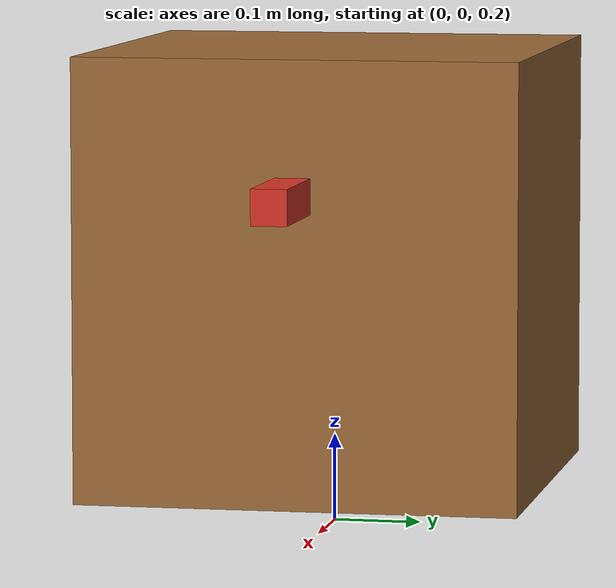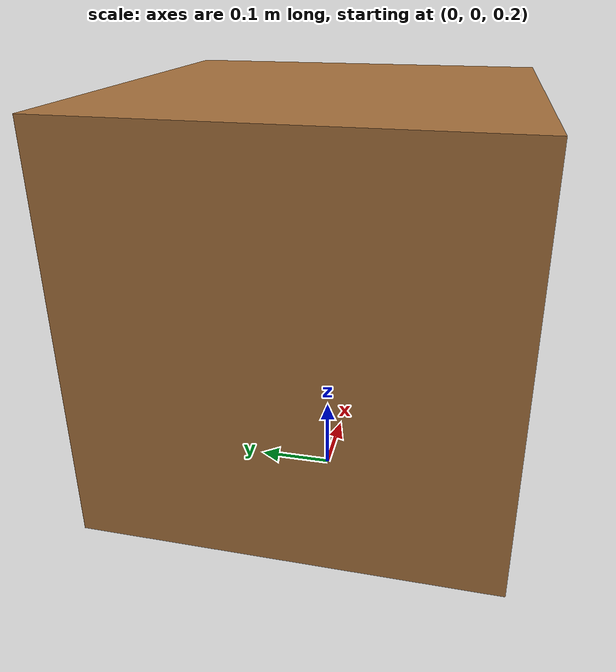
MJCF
<mujoco model="box_mech">
  <option timestep="0.002" integrator="RK4" gravity="0 0 -9.81"/>

  <default>
    <geom contype="1" conaffinity="1" friction="0.8 0.02 0.01"/>
  </default>

  <worldbody>
    <body name="chassis" pos="0 0 0.5">
      <joint name="slide_x" type="slide" axis="1 0 0" damping="0.2"/>
      <joint name="slide_y" type="slide" axis="0 1 0" damping="0.2"/>
      <joint name="yaw_z" type="hinge" axis="0 0 1" damping="0.05"/>
      <!-- box mech: matches crate visuals (0.5m cube), CoM-centered -->
      <geom name="chassis_box" type="box" size="0.25 0.25 0.25"
            mass="10" rgba="0.62 0.42 0.22 1"/>
      <!-- heading nose (+X): visual only, no contact -->
      <geom name="nose" type="box" size="0.08 0.02 0.02" pos="0.3 0 0.1"
            mass="0" contype="0" conaffinity="0" rgba="0.85 0.2 0.15 1"/>
    </body>
  </worldbody>

  <actuator>
    <!-- velocity servos: track cmd [vx, vy, yaw_rate] directly.
         kv tuned so steady-state tracking error vs ground friction < 2%. -->
    <velocity name="vx" joint="slide_x" kv="120" forcerange="-400 400" ctrlrange="-3 3"/>
    <velocity name="vy" joint="slide_y" kv="120" forcerange="-400 400" ctrlrange="-3 3"/>
    <velocity name="yaw_rate" joint="yaw_z" kv="60" forcerange="-200 200" ctrlrange="-6 6"/>
  </actuator>
</mujoco>
